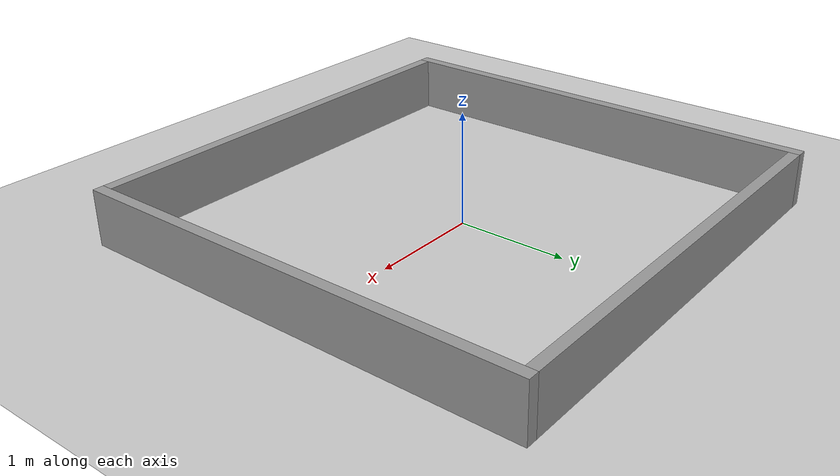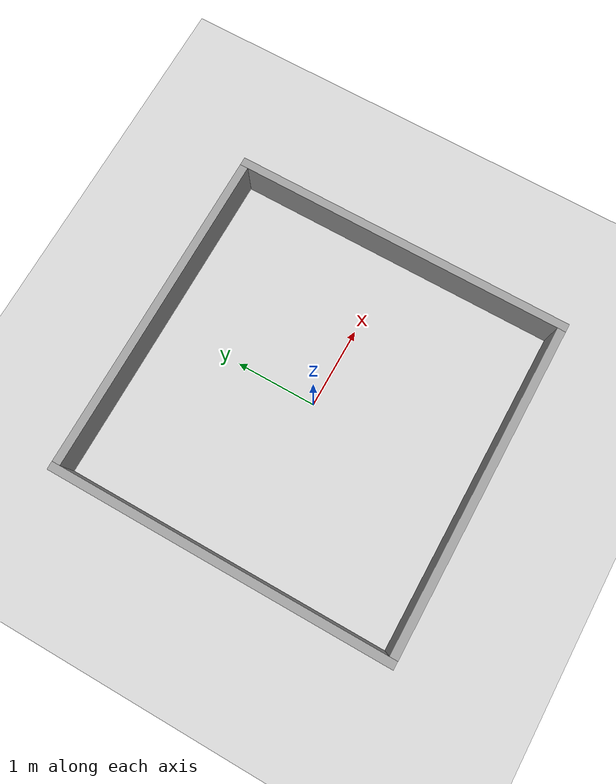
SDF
<?xml version="1.0" ?>

<sdf version="1.6">
  <world name="gesc_gaussian_validation">
    <include>
      <uri>model://sun</uri>
    </include>
    <include>
      <uri>model://ground_plane</uri>
    </include>

    <model name="validation_wall_east">
      <static>true</static>
      <pose>2.05 0 0.25 0 0 0</pose>
      <link name="wall">
        <collision name="collision">
          <geometry><box><size>0.10 4.20 0.50</size></box></geometry>
        </collision>
        <visual name="visual">
          <geometry><box><size>0.10 4.20 0.50</size></box></geometry>
          <material><ambient>0.6 0.6 0.6 1</ambient></material>
        </visual>
      </link>
    </model>

    <model name="validation_wall_west">
      <static>true</static>
      <pose>-2.05 0 0.25 0 0 0</pose>
      <link name="wall">
        <collision name="collision">
          <geometry><box><size>0.10 4.20 0.50</size></box></geometry>
        </collision>
        <visual name="visual">
          <geometry><box><size>0.10 4.20 0.50</size></box></geometry>
          <material><ambient>0.6 0.6 0.6 1</ambient></material>
        </visual>
      </link>
    </model>

    <model name="validation_wall_north">
      <static>true</static>
      <pose>0 2.05 0.25 0 0 0</pose>
      <link name="wall">
        <collision name="collision">
          <geometry><box><size>4.00 0.10 0.50</size></box></geometry>
        </collision>
        <visual name="visual">
          <geometry><box><size>4.00 0.10 0.50</size></box></geometry>
          <material><ambient>0.6 0.6 0.6 1</ambient></material>
        </visual>
      </link>
    </model>

    <model name="validation_wall_south">
      <static>true</static>
      <pose>0 -2.05 0.25 0 0 0</pose>
      <link name="wall">
        <collision name="collision">
          <geometry><box><size>4.00 0.10 0.50</size></box></geometry>
        </collision>
        <visual name="visual">
          <geometry><box><size>4.00 0.10 0.50</size></box></geometry>
          <material><ambient>0.6 0.6 0.6 1</ambient></material>
        </visual>
      </link>
    </model>
  </world>
</sdf>
